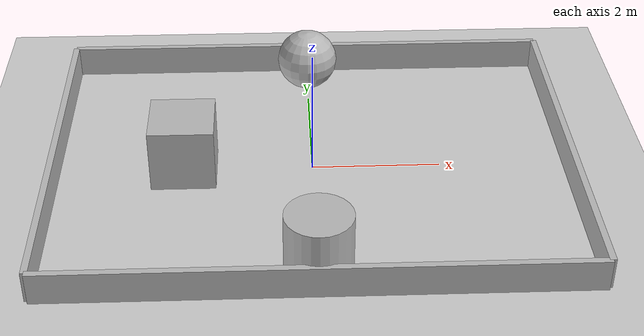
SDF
<sdf version='1.4'>
  <world name="default">
    <include>
      <uri>model://ground_plane</uri>
    </include>
    <include>
      <uri>model://sun</uri>
    </include>

    <model name="box">
      <pose>-2.0 0 0.5 0 0 0</pose>
      <link name="link">
        <collision name="collision">
          <geometry>
            <box>
              <size>1 1 1</size>
            </box>
          </geometry>
        </collision>
        <visual name="visual">
          <geometry>
            <box>
              <size>1 1 1</size>
            </box>
          </geometry>
          <material>
            <script>Gazebo/WoodPallet</script>
          </material>
        </visual>
      </link>
    </model>

    <model name="sphere">
      <pose>0 2.5 0.5 0 0 0</pose>
      <link name="link">
        <collision name="collision">
          <geometry>
            <sphere>
              <radius>0.5</radius>
            </sphere>
          </geometry>
        </collision>
        <visual name="visual">
          <geometry>
            <sphere>
              <radius>0.5</radius>
            </sphere>
          </geometry>
          <material>
            <script>Gazebo/WoodPallet</script>
          </material>
        </visual>
      </link>
    </model>
    <model name="cylinder">
      <pose>0 -2.5 0.5 0 0 0</pose>
      <link name="link">
        <collision name="collision">
          <geometry>
            <cylinder>
              <radius>0.5</radius>
              <length>1.0</length>
            </cylinder>
          </geometry>
        </collision>
        <visual name="visual">
          <geometry>
            <cylinder>
              <radius>0.5</radius>
              <length>1.0</length>
            </cylinder>
          </geometry>
          <material>
            <script>Gazebo/WoodPallet</script>
          </material>
        </visual>
      </link>
    </model>

    <model name="wall_1">
      <pose>-4.0 0 0.25 0 0 1.5708</pose>
      <link name="link">
        <collision name="collision">
          <geometry>
            <box>
              <size>6 0.1 0.5</size>
            </box>
          </geometry>
        </collision>
        <visual name="visual">
          <geometry>
            <box>
              <size>6 0.1 0.5</size>
            </box>
          </geometry>
          <material>
            <script>Gazebo/WoodPallet</script>
          </material>
        </visual>
      </link>
    </model>
    <model name="wall_1">
      <pose>4.0 0 0.25 0 0 1.5708</pose>
      <link name="link">
        <collision name="collision">
          <geometry>
            <box>
              <size>6 0.1 0.5</size>
            </box>
          </geometry>
        </collision>
        <visual name="visual">
          <geometry>
            <box>
              <size>6 0.1 0.5</size>
            </box>
          </geometry>
          <material>
            <script>Gazebo/WoodPallet</script>
          </material>
        </visual>
      </link>
    </model>
    <model name="wall_2">
      <pose>0 3.0 0.25 0 0 0</pose>
      <link name="link">
        <collision name="collision">
          <geometry>
            <box>
              <size>8 0.1 0.5</size>
            </box>
          </geometry>
        </collision>
        <visual name="visual">
          <geometry>
            <box>
              <size>8 0.1 0.5</size>
            </box>
          </geometry>
          <material>
            <script>Gazebo/WoodPallet</script>
          </material>
        </visual>
      </link>
    </model>
    <model name="wall_3">
      <pose>0 -3.0 0.25 0 0 0</pose>
      <link name="link">
        <collision name="collision">
          <geometry>
            <box>
              <size>8 0.1 0.5</size>
            </box>
          </geometry>
        </collision>
        <visual name="visual">
          <geometry>
            <box>
              <size>8 0.1 0.5</size>
            </box>
          </geometry>
          <material>
            <script>Gazebo/WoodPallet</script>
          </material>
        </visual>
      </link>
    </model>

  </world>
</sdf>
